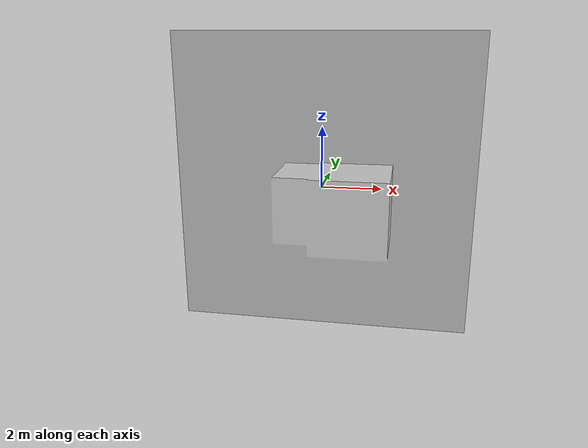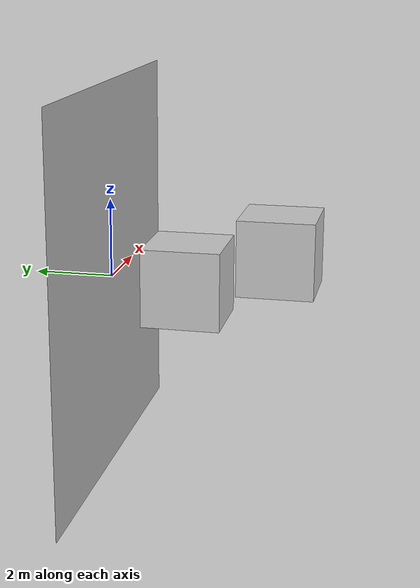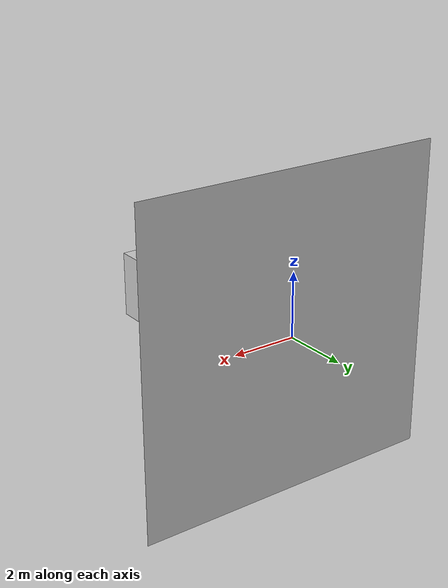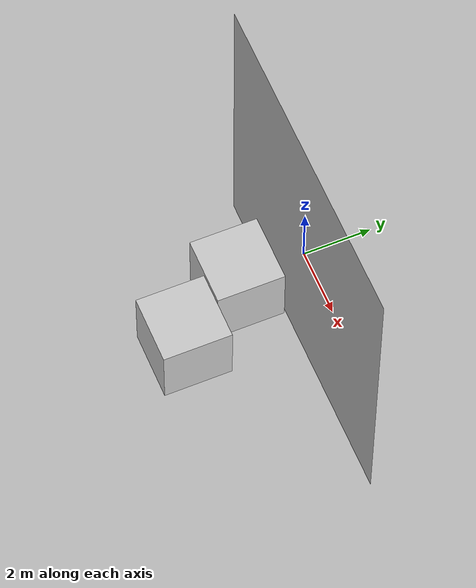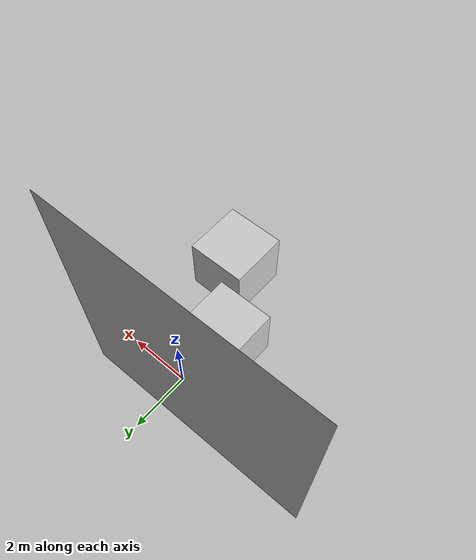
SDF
<?xml version='1.0' ?>
<sdf version="1.6">
    <model name="soft_body_cube">
        <static>true</static>
        <link name="link">
            <pose>0 0 0 1.57 3.14159 0</pose>
            <collision name="collision">
                <geometry>
                    <mesh>
                        <uri>meshes/soft_body_cube.dae</uri>
                    </mesh>
                </geometry>
            </collision>
            <visual name="visual">
                <geometry>
                    <mesh>
                        <uri>meshes/soft_body_cube.dae</uri>
                    </mesh>
                </geometry>
            </visual>
        </link>
    </model>
</sdf>
